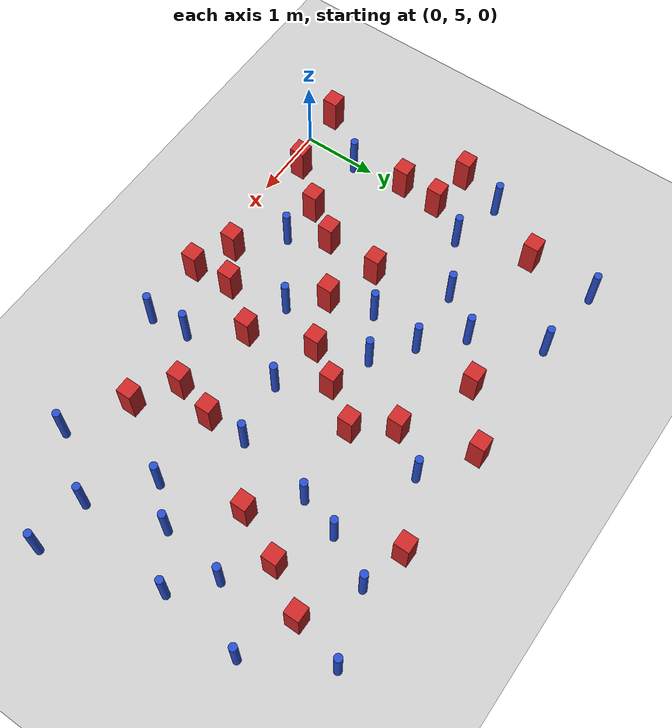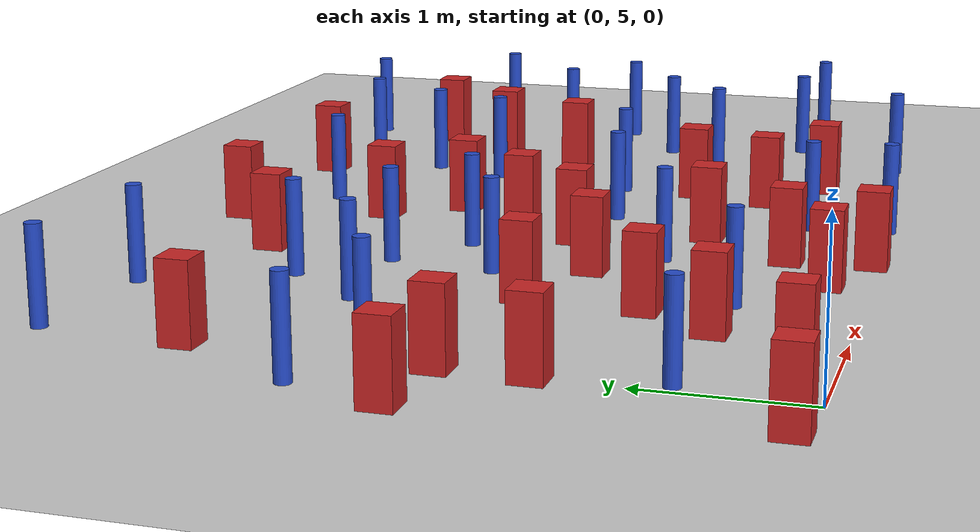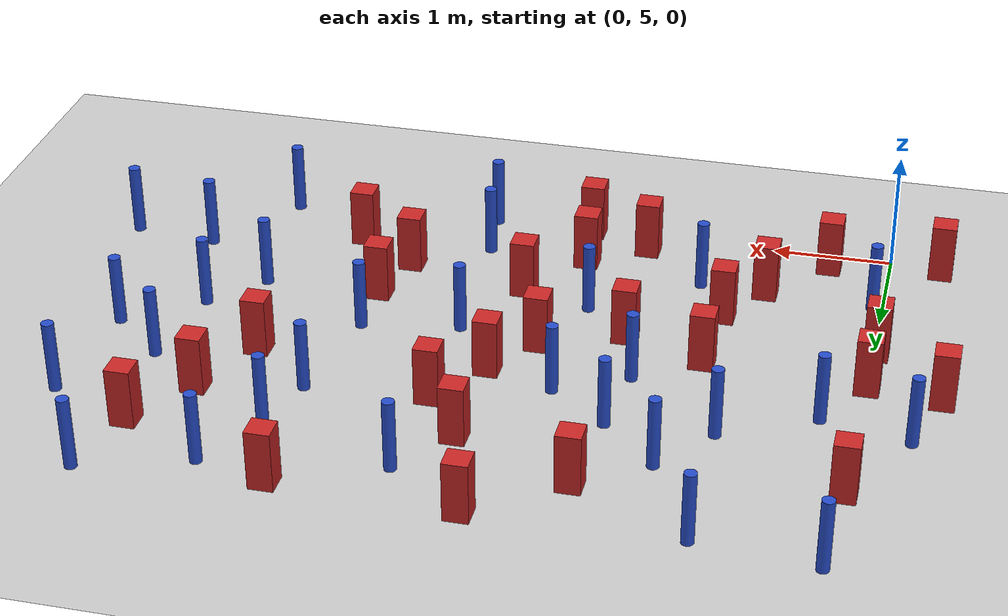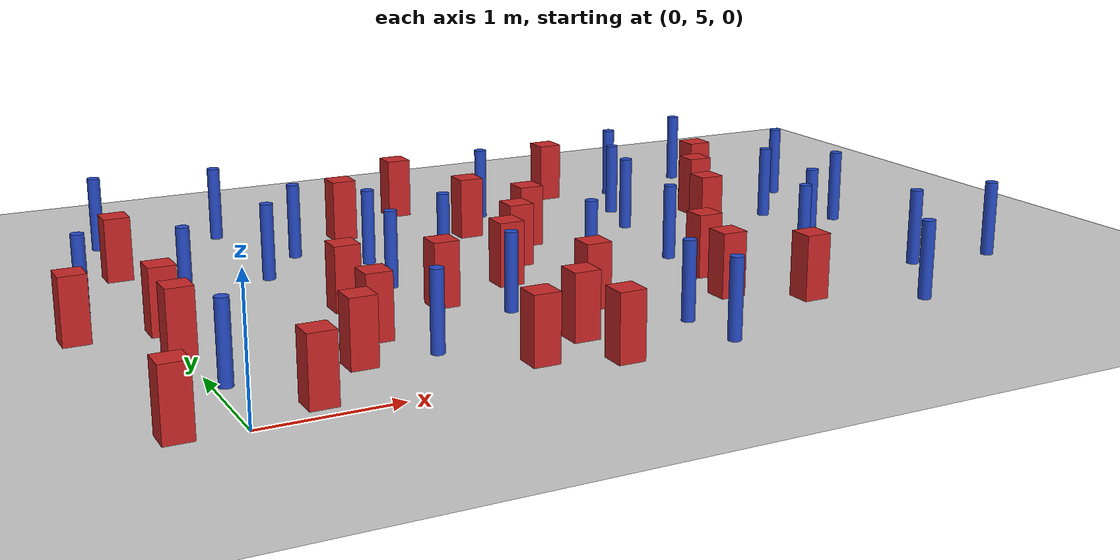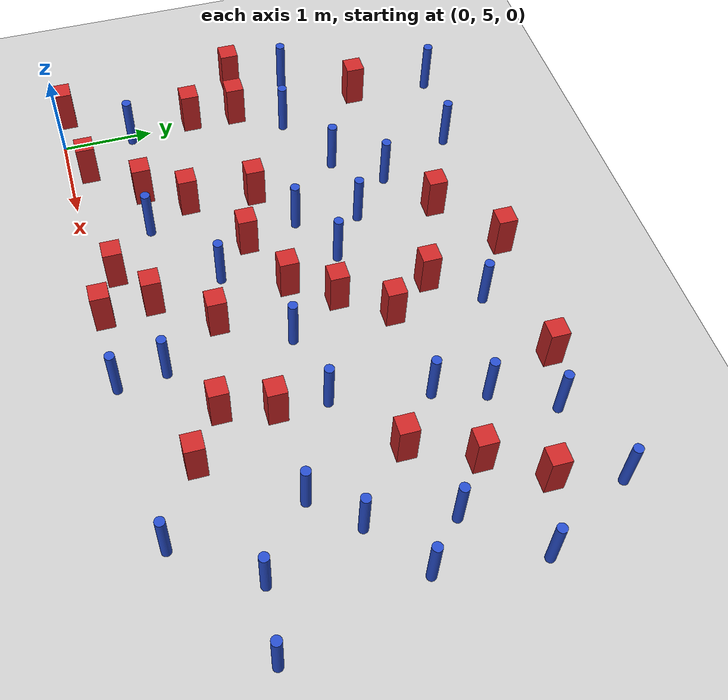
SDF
<sdf version="1.6">
 <world name="default">
  <model name="ground_plane">
   <static>1</static>
   <link name="link">
    <collision name="collision">
     <geometry><plane><normal>0 0 1</normal><size>100 100</size></plane></geometry>
     <surface><friction><ode><mu>100</mu><mu2>50</mu2></ode></friction></surface>
    </collision>
    <visual name="visual">
     <cast_shadows>0</cast_shadows>
     <geometry><plane><normal>0 0 1</normal><size>100 100</size></plane></geometry>
     <material>
      <ambient>1.0 1.0 1.0 1.0</ambient>
      <diffuse>0.8 0.8 0.8 1.0</diffuse>
      <specular>0.01 0.01 0.01 1.000000</specular>
     </material>
    </visual>
   </link>
  </model>
  <model name="square_post_obstacle2">
   <static>true</static>
   <pose>1.98796259758 8.79304583945 8.22691968438e-08 7.22125133819e-06 -7.54495500217e-07 2.29674213826e-05</pose>
   <link name="link">
    <pose>0 0 0.25 0 -0 0</pose>
    <inertial>
     <mass>100</mass>
     <inertia>
      <ixx>0.166667</ixx>
      <ixy>0</ixy>
      <ixz>0</ixz>
      <iyy>0.166667</iyy>
      <iyz>0</iyz>
      <izz>0.166667</izz>
     </inertia>
    </inertial>
    <collision name="collision"><geometry><box><size>.2 .2 .5</size></box></geometry></collision>
    <visual name="visual">
     <geometry><box><size>.2 .2 .5</size></box></geometry>
     <material>
      <script><name>Gazebo/Red</name><uri>file://media/materials/scripts/gazebo.material</uri></script>
     </material>
    </visual>
   </link>
  </model>
  <model name="pole_obstacle6">
   <static>true</static>
   <pose>-0.401653053069 7.68126445907 2.88873142074e-08 -9.90536689683e-09 4.60219948993e-07 -1.20965994957e-07</pose>
   <link name="link">
    <pose>0 0 0.3 0 -0 0</pose>
    <inertial>
     <mass>1</mass>
     <inertia><ixx>0.145833</ixx><ixy>0</ixy><ixz>0</ixz><iyy>0.145833</iyy><iyz>0</iyz><izz>0.125</izz></inertia>
    </inertial>
    <collision name="collision">
     <geometry><cylinder><radius>0.05</radius><length>.6</length></cylinder></geometry>
    </collision>
    <visual name="visual">
     <geometry><cylinder><radius>0.05</radius><length>.6</length></cylinder></geometry>
     <material>
      <script><name>Gazebo/Blue</name><uri>file://media/materials/scripts/gazebo.material</uri></script>
     </material>
    </visual>
   </link>
  </model>
  <model name="square_post_obstacle16">
   <static>true</static>
   <pose>2.9685054038 8.38365532075 8.22691968438e-08 7.22125133819e-06 -7.54495500217e-07 2.29674213826e-05</pose>
   <link name="link">
    <pose>0 0 0.25 0 -0 0</pose>
    <inertial>
     <mass>100</mass>
     <inertia>
      <ixx>0.166667</ixx>
      <ixy>0</ixy>
      <ixz>0</ixz>
      <iyy>0.166667</iyy>
      <iyz>0</iyz>
      <izz>0.166667</izz>
     </inertia>
    </inertial>
    <collision name="collision"><geometry><box><size>.2 .2 .5</size></box></geometry></collision>
    <visual name="visual">
     <geometry><box><size>.2 .2 .5</size></box></geometry>
     <material>
      <script><name>Gazebo/Red</name><uri>file://media/materials/scripts/gazebo.material</uri></script>
     </material>
    </visual>
   </link>
  </model>
  <model name="pole_obstacle12">
   <static>true</static>
   <pose>5.22611355301 5.19054820022 2.88873142074e-08 -9.90536690842e-09 4.60219948965e-07 -1.20965994976e-07</pose>
   <link name="link">
    <pose>0 0 0.3 0 -0 0</pose>
    <inertial>
     <mass>1</mass>
     <inertia><ixx>0.145833</ixx><ixy>0</ixy><ixz>0</ixz><iyy>0.145833</iyy><iyz>0</iyz><izz>0.125</izz></inertia>
    </inertial>
    <collision name="collision">
     <geometry><cylinder><radius>0.05</radius><length>.6</length></cylinder></geometry>
    </collision>
    <visual name="visual">
     <geometry><cylinder><radius>0.05</radius><length>.6</length></cylinder></geometry>
     <material>
      <script><name>Gazebo/Blue</name><uri>file://media/materials/scripts/gazebo.material</uri></script>
     </material>
    </visual>
   </link>
  </model>
  <model name="pole_obstacle26">
   <static>true</static>
   <pose>6.05952672036 7.37521620662 2.88873142074e-08 -9.90536690842e-09 4.60219948965e-07 -1.20965994976e-07</pose>
   <link name="link">
    <pose>0 0 0.3 0 -0 0</pose>
    <inertial>
     <mass>1</mass>
     <inertia><ixx>0.145833</ixx><ixy>0</ixy><ixz>0</ixz><iyy>0.145833</iyy><iyz>0</iyz><izz>0.125</izz></inertia>
    </inertial>
    <collision name="collision">
     <geometry><cylinder><radius>0.05</radius><length>.6</length></cylinder></geometry>
    </collision>
    <visual name="visual">
     <geometry><cylinder><radius>0.05</radius><length>.6</length></cylinder></geometry>
     <material>
      <script><name>Gazebo/Blue</name><uri>file://media/materials/scripts/gazebo.material</uri></script>
     </material>
    </visual>
   </link>
  </model>
  <model name="pole_obstacle28">
   <static>true</static>
   <pose>0.0853518656689 5.77530740988 2.88873142074e-08 -9.90536689742e-09 4.60219948992e-07 -1.2096599496e-07</pose>
   <link name="link">
    <pose>0 0 0.3 0 -0 0</pose>
    <inertial>
     <mass>1</mass>
     <inertia><ixx>0.145833</ixx><ixy>0</ixy><ixz>0</ixz><iyy>0.145833</iyy><iyz>0</iyz><izz>0.125</izz></inertia>
    </inertial>
    <collision name="collision">
     <geometry><cylinder><radius>0.05</radius><length>.6</length></cylinder></geometry>
    </collision>
    <visual name="visual">
     <geometry><cylinder><radius>0.05</radius><length>.6</length></cylinder></geometry>
     <material>
      <script><name>Gazebo/Blue</name><uri>file://media/materials/scripts/gazebo.material</uri></script>
     </material>
    </visual>
   </link>
  </model>
  <model name="pole_obstacle31">
   <static>true</static>
   <pose>2.36539712762 6.32316759056 2.88873142074e-08 -9.90536689859e-09 4.60219948989e-07 -1.20965994961e-07</pose>
   <link name="link">
    <pose>0 0 0.3 0 -0 0</pose>
    <inertial>
     <mass>1</mass>
     <inertia><ixx>0.145833</ixx><ixy>0</ixy><ixz>0</ixz><iyy>0.145833</iyy><iyz>0</iyz><izz>0.125</izz></inertia>
    </inertial>
    <collision name="collision">
     <geometry><cylinder><radius>0.05</radius><length>.6</length></cylinder></geometry>
    </collision>
    <visual name="visual">
     <geometry><cylinder><radius>0.05</radius><length>.6</length></cylinder></geometry>
     <material>
      <script><name>Gazebo/Blue</name><uri>file://media/materials/scripts/gazebo.material</uri></script>
     </material>
    </visual>
   </link>
  </model>
  <model name="pole_obstacle40">
   <static>true</static>
   <pose>4.76409108088 9.11372252063 2.88873142074e-08 -9.9053668967e-09 4.60219948993e-07 -1.20965994957e-07</pose>
   <link name="link">
    <pose>0 0 0.3 0 -0 0</pose>
    <inertial>
     <mass>1</mass>
     <inertia><ixx>0.145833</ixx><ixy>0</ixy><ixz>0</ixz><iyy>0.145833</iyy><iyz>0</iyz><izz>0.125</izz></inertia>
    </inertial>
    <collision name="collision">
     <geometry><cylinder><radius>0.05</radius><length>.6</length></cylinder></geometry>
    </collision>
    <visual name="visual">
     <geometry><cylinder><radius>0.05</radius><length>.6</length></cylinder></geometry>
     <material>
      <script><name>Gazebo/Blue</name><uri>file://media/materials/scripts/gazebo.material</uri></script>
     </material>
    </visual>
   </link>
  </model>
  <model name="square_post_obstacle44">
   <static>true</static>
   <pose>1.98418487472 6.69702983785 8.22691968438e-08 7.2212513382e-06 -7.54495500217e-07 2.29674213826e-05</pose>
   <link name="link">
    <pose>0 0 0.25 0 -0 0</pose>
    <inertial>
     <mass>100</mass>
     <inertia>
      <ixx>0.166667</ixx>
      <ixy>0</ixy>
      <ixz>0</ixz>
      <iyy>0.166667</iyy>
      <iyz>0</iyz>
      <izz>0.166667</izz>
     </inertia>
    </inertial>
    <collision name="collision"><geometry><box><size>.2 .2 .5</size></box></geometry></collision>
    <visual name="visual">
     <geometry><box><size>.2 .2 .5</size></box></geometry>
     <material>
      <script><name>Gazebo/Red</name><uri>file://media/materials/scripts/gazebo.material</uri></script>
     </material>
    </visual>
   </link>
  </model>
  <model name="square_post_obstacle50">
   <static>true</static>
   <pose>0.00299249147081 7.01537845196 8.22691968438e-08 7.2212513382e-06 -7.54495500217e-07 2.29674213826e-05</pose>
   <link name="link">
    <pose>0 0 0.25 0 -0 0</pose>
    <inertial>
     <mass>100</mass>
     <inertia>
      <ixx>0.166667</ixx>
      <ixy>0</ixy>
      <ixz>0</ixz>
      <iyy>0.166667</iyy>
      <iyz>0</iyz>
      <izz>0.166667</izz>
     </inertia>
    </inertial>
    <collision name="collision"><geometry><box><size>.2 .2 .5</size></box></geometry></collision>
    <visual name="visual">
     <geometry><box><size>.2 .2 .5</size></box></geometry>
     <material>
      <script><name>Gazebo/Red</name><uri>file://media/materials/scripts/gazebo.material</uri></script>
     </material>
    </visual>
   </link>
  </model>
  <model name="square_post_obstacle51">
   <static>true</static>
   <pose>5.11383252904 8.17277839527 8.22691968438e-08 7.22125133819e-06 -7.54495500217e-07 2.29674213826e-05</pose>
   <link name="link">
    <pose>0 0 0.25 0 -0 0</pose>
    <inertial>
     <mass>100</mass>
     <inertia>
      <ixx>0.166667</ixx>
      <ixy>0</ixy>
      <ixz>0</ixz>
      <iyy>0.166667</iyy>
      <iyz>0</iyz>
      <izz>0.166667</izz>
     </inertia>
    </inertial>
    <collision name="collision"><geometry><box><size>.2 .2 .5</size></box></geometry></collision>
    <visual name="visual">
     <geometry><box><size>.2 .2 .5</size></box></geometry>
     <material>
      <script><name>Gazebo/Red</name><uri>file://media/materials/scripts/gazebo.material</uri></script>
     </material>
    </visual>
   </link>
  </model>
  <model name="square_post_obstacle52">
   <static>true</static>
   <pose>1.31627842537 6.93878503025 8.22691968438e-08 7.2212513382e-06 -7.54495500217e-07 2.29674213826e-05</pose>
   <link name="link">
    <pose>0 0 0.25 0 -0 0</pose>
    <inertial>
     <mass>100</mass>
     <inertia>
      <ixx>0.166667</ixx>
      <ixy>0</ixy>
      <ixz>0</ixz>
      <iyy>0.166667</iyy>
      <iyz>0</iyz>
      <izz>0.166667</izz>
     </inertia>
    </inertial>
    <collision name="collision"><geometry><box><size>.2 .2 .5</size></box></geometry></collision>
    <visual name="visual">
     <geometry><box><size>.2 .2 .5</size></box></geometry>
     <material>
      <script><name>Gazebo/Red</name><uri>file://media/materials/scripts/gazebo.material</uri></script>
     </material>
    </visual>
   </link>
  </model>
  <model name="square_post_obstacle54">
   <static>true</static>
   <pose>4.48538661829 5.61613621962 8.22691968438e-08 7.2212513382e-06 -7.54495500217e-07 2.29674213826e-05</pose>
   <link name="link">
    <pose>0 0 0.25 0 -0 0</pose>
    <inertial>
     <mass>100</mass>
     <inertia>
      <ixx>0.166667</ixx>
      <ixy>0</ixy>
      <ixz>0</ixz>
      <iyy>0.166667</iyy>
      <iyz>0</iyz>
      <izz>0.166667</izz>
     </inertia>
    </inertial>
    <collision name="collision"><geometry><box><size>.2 .2 .5</size></box></geometry></collision>
    <visual name="visual">
     <geometry><box><size>.2 .2 .5</size></box></geometry>
     <material>
      <script><name>Gazebo/Red</name><uri>file://media/materials/scripts/gazebo.material</uri></script>
     </material>
    </visual>
   </link>
  </model>
  <model name="square_post_obstacle60">
   <static>true</static>
   <pose>0.504107312801 5.21696208588 8.22691968438e-08 7.2212513382e-06 -7.54495500217e-07 2.29674213826e-05</pose>
   <link name="link">
    <pose>0 0 0.25 0 -0 0</pose>
    <inertial>
     <mass>100</mass>
     <inertia>
      <ixx>0.166667</ixx>
      <ixy>0</ixy>
      <ixz>0</ixz>
      <iyy>0.166667</iyy>
      <iyz>0</iyz>
      <izz>0.166667</izz>
     </inertia>
    </inertial>
    <collision name="collision"><geometry><box><size>.2 .2 .5</size></box></geometry></collision>
    <visual name="visual">
     <geometry><box><size>.2 .2 .5</size></box></geometry>
     <material>
      <script><name>Gazebo/Red</name><uri>file://media/materials/scripts/gazebo.material</uri></script>
     </material>
    </visual>
   </link>
  </model>
  <model name="square_post_obstacle61">
   <static>true</static>
   <pose>-0.0183227264189 6.49176881317 8.22691968438e-08 7.22125133819e-06 -7.54495500217e-07 2.29674213826e-05</pose>
   <link name="link">
    <pose>0 0 0.25 0 -0 0</pose>
    <inertial>
     <mass>100</mass>
     <inertia>
      <ixx>0.166667</ixx>
      <ixy>0</ixy>
      <ixz>0</ixz>
      <iyy>0.166667</iyy>
      <iyz>0</iyz>
      <izz>0.166667</izz>
     </inertia>
    </inertial>
    <collision name="collision"><geometry><box><size>.2 .2 .5</size></box></geometry></collision>
    <visual name="visual">
     <geometry><box><size>.2 .2 .5</size></box></geometry>
     <material>
      <script><name>Gazebo/Red</name><uri>file://media/materials/scripts/gazebo.material</uri></script>
     </material>
    </visual>
   </link>
  </model>
  <model name="pole_obstacle58">
   <static>true</static>
   <pose>4.11882379785 6.99465052671 2.88873142074e-08 -9.90536690842e-09 4.60219948965e-07 -1.20965994976e-07</pose>
   <link name="link">
    <pose>0 0 0.3 0 -0 0</pose>
    <inertial>
     <mass>1</mass>
     <inertia><ixx>0.145833</ixx><ixy>0</ixy><ixz>0</ixz><iyy>0.145833</iyy><iyz>0</iyz><izz>0.125</izz></inertia>
    </inertial>
    <collision name="collision">
     <geometry><cylinder><radius>0.05</radius><length>.6</length></cylinder></geometry>
    </collision>
    <visual name="visual">
     <geometry><cylinder><radius>0.05</radius><length>.6</length></cylinder></geometry>
     <material>
      <script><name>Gazebo/Blue</name><uri>file://media/materials/scripts/gazebo.material</uri></script>
     </material>
    </visual>
   </link>
  </model>
  <model name="square_post_obstacle63">
   <static>true</static>
   <pose>2.576629722 5.05891316451 8.22691968438e-08 7.2212513382e-06 -7.54495500217e-07 2.29674213826e-05</pose>
   <link name="link">
    <pose>0 0 0.25 0 -0 0</pose>
    <inertial>
     <mass>100</mass>
     <inertia>
      <ixx>0.166667</ixx>
      <ixy>0</ixy>
      <ixz>0</ixz>
      <iyy>0.166667</iyy>
      <iyz>0</iyz>
      <izz>0.166667</izz>
     </inertia>
    </inertial>
    <collision name="collision"><geometry><box><size>.2 .2 .5</size></box></geometry></collision>
    <visual name="visual">
     <geometry><box><size>.2 .2 .5</size></box></geometry>
     <material>
      <script><name>Gazebo/Red</name><uri>file://media/materials/scripts/gazebo.material</uri></script>
     </material>
    </visual>
   </link>
  </model>
  <model name="pole_obstacle65">
   <static>true</static>
   <pose>5.7673109105 5.96289307169 2.88873142074e-08 -9.90536690842e-09 4.60219948965e-07 -1.20965994976e-07</pose>
   <link name="link">
    <pose>0 0 0.3 0 -0 0</pose>
    <inertial>
     <mass>1</mass>
     <inertia><ixx>0.145833</ixx><ixy>0</ixy><ixz>0</ixz><iyy>0.145833</iyy><iyz>0</iyz><izz>0.125</izz></inertia>
    </inertial>
    <collision name="collision">
     <geometry><cylinder><radius>0.05</radius><length>.6</length></cylinder></geometry>
    </collision>
    <visual name="visual">
     <geometry><cylinder><radius>0.05</radius><length>.6</length></cylinder></geometry>
     <material>
      <script><name>Gazebo/Blue</name><uri>file://media/materials/scripts/gazebo.material</uri></script>
     </material>
    </visual>
   </link>
  </model>
  <model name="pole_obstacle77">
   <static>true</static>
   <pose>3.43847141067 5.04872722014 2.88873142074e-08 -9.90536689859e-09 4.60219948989e-07 -1.20965994961e-07</pose>
   <link name="link">
    <pose>0 0 0.3 0 -0 0</pose>
    <inertial>
     <mass>1</mass>
     <inertia><ixx>0.145833</ixx><ixy>0</ixy><ixz>0</ixz><iyy>0.145833</iyy><iyz>0</iyz><izz>0.125</izz></inertia>
    </inertial>
    <collision name="collision">
     <geometry><cylinder><radius>0.05</radius><length>.6</length></cylinder></geometry>
    </collision>
    <visual name="visual">
     <geometry><cylinder><radius>0.05</radius><length>.6</length></cylinder></geometry>
     <material>
      <script><name>Gazebo/Blue</name><uri>file://media/materials/scripts/gazebo.material</uri></script>
     </material>
    </visual>
   </link>
  </model>
  <model name="pole_obstacle78">
   <static>true</static>
   <pose>1.906260697 7.95363622304 2.88873142074e-08 -9.9053669006e-09 4.60219948984e-07 -1.20965994963e-07</pose>
   <link name="link">
    <pose>0 0 0.3 0 -0 0</pose>
    <inertial>
     <mass>1</mass>
     <inertia><ixx>0.145833</ixx><ixy>0</ixy><ixz>0</ixz><iyy>0.145833</iyy><iyz>0</iyz><izz>0.125</izz></inertia>
    </inertial>
    <collision name="collision">
     <geometry><cylinder><radius>0.05</radius><length>.6</length></cylinder></geometry>
    </collision>
    <visual name="visual">
     <geometry><cylinder><radius>0.05</radius><length>.6</length></cylinder></geometry>
     <material>
      <script><name>Gazebo/Blue</name><uri>file://media/materials/scripts/gazebo.material</uri></script>
     </material>
    </visual>
   </link>
  </model>
  <model name="square_post_obstacle80">
   <static>true</static>
   <pose>4.81383185864 7.53003523615 8.22691968438e-08 7.2212513382e-06 -7.54495500217e-07 2.29674213826e-05</pose>
   <link name="link">
    <pose>0 0 0.25 0 -0 0</pose>
    <inertial>
     <mass>100</mass>
     <inertia>
      <ixx>0.166667</ixx>
      <ixy>0</ixy>
      <ixz>0</ixz>
      <iyy>0.166667</iyy>
      <iyz>0</iyz>
      <izz>0.166667</izz>
     </inertia>
    </inertial>
    <collision name="collision"><geometry><box><size>.2 .2 .5</size></box></geometry></collision>
    <visual name="visual">
     <geometry><box><size>.2 .2 .5</size></box></geometry>
     <material>
      <script><name>Gazebo/Red</name><uri>file://media/materials/scripts/gazebo.material</uri></script>
     </material>
    </visual>
   </link>
  </model>
  <model name="pole_obstacle87">
   <static>true</static>
   <pose>4.45098887525 8.50598818341 2.88873142074e-08 -9.9053668967e-09 4.60219948993e-07 -1.20965994957e-07</pose>
   <link name="link">
    <pose>0 0 0.3 0 -0 0</pose>
    <inertial>
     <mass>1</mass>
     <inertia><ixx>0.145833</ixx><ixy>0</ixy><ixz>0</ixz><iyy>0.145833</iyy><iyz>0</iyz><izz>0.125</izz></inertia>
    </inertial>
    <collision name="collision">
     <geometry><cylinder><radius>0.05</radius><length>.6</length></cylinder></geometry>
    </collision>
    <visual name="visual">
     <geometry><cylinder><radius>0.05</radius><length>.6</length></cylinder></geometry>
     <material>
      <script><name>Gazebo/Blue</name><uri>file://media/materials/scripts/gazebo.material</uri></script>
     </material>
    </visual>
   </link>
  </model>
  <model name="square_post_obstacle87">
   <static>true</static>
   <pose>3.29406379218 7.91090531966 8.22691968438e-08 7.22125133819e-06 -7.54495500217e-07 2.29674213826e-05</pose>
   <link name="link">
    <pose>0 0 0.25 0 -0 0</pose>
    <inertial>
     <mass>100</mass>
     <inertia>
      <ixx>0.166667</ixx>
      <ixy>0</ixy>
      <ixz>0</ixz>
      <iyy>0.166667</iyy>
      <iyz>0</iyz>
      <izz>0.166667</izz>
     </inertia>
    </inertial>
    <collision name="collision"><geometry><box><size>.2 .2 .5</size></box></geometry></collision>
    <visual name="visual">
     <geometry><box><size>.2 .2 .5</size></box></geometry>
     <material>
      <script><name>Gazebo/Red</name><uri>file://media/materials/scripts/gazebo.material</uri></script>
     </material>
    </visual>
   </link>
  </model>
  <model name="square_post_obstacle90">
   <static>true</static>
   <pose>2.05681841043 5.26828427987 8.22691968438e-08 7.22125133819e-06 -7.54495500217e-07 2.29674213826e-05</pose>
   <link name="link">
    <pose>0 0 0.25 0 -0 0</pose>
    <inertial>
     <mass>100</mass>
     <inertia>
      <ixx>0.166667</ixx>
      <ixy>0</ixy>
      <ixz>0</ixz>
      <iyy>0.166667</iyy>
      <iyz>0</iyz>
      <izz>0.166667</izz>
     </inertia>
    </inertial>
    <collision name="collision"><geometry><box><size>.2 .2 .5</size></box></geometry></collision>
    <visual name="visual">
     <geometry><box><size>.2 .2 .5</size></box></geometry>
     <material>
      <script><name>Gazebo/Red</name><uri>file://media/materials/scripts/gazebo.material</uri></script>
     </material>
    </visual>
   </link>
  </model>
  <model name="pole_obstacle102">
   <static>true</static>
   <pose>1.52292621825 5.73033918514 2.88873142074e-08 -9.90536689852e-09 4.60219948989e-07 -1.2096599496e-07</pose>
   <link name="link">
    <pose>0 0 0.3 0 -0 0</pose>
    <inertial>
     <mass>1</mass>
     <inertia><ixx>0.145833</ixx><ixy>0</ixy><ixz>0</ixz><iyy>0.145833</iyy><iyz>0</iyz><izz>0.125</izz></inertia>
    </inertial>
    <collision name="collision">
     <geometry><cylinder><radius>0.05</radius><length>.6</length></cylinder></geometry>
    </collision>
    <visual name="visual">
     <geometry><cylinder><radius>0.05</radius><length>.6</length></cylinder></geometry>
     <material>
      <script><name>Gazebo/Blue</name><uri>file://media/materials/scripts/gazebo.material</uri></script>
     </material>
    </visual>
   </link>
  </model>
  <model name="square_post_obstacle108">
   <static>true</static>
   <pose>-0.424550774962 5.09280565136 8.22691968438e-08 7.22125133819e-06 -7.54495500217e-07 2.29674213826e-05</pose>
   <link name="link">
    <pose>0 0 0.25 0 -0 0</pose>
    <inertial>
     <mass>100</mass>
     <inertia>
      <ixx>0.166667</ixx>
      <ixy>0</ixy>
      <ixz>0</ixz>
      <iyy>0.166667</iyy>
      <iyz>0</iyz>
      <izz>0.166667</izz>
     </inertia>
    </inertial>
    <collision name="collision"><geometry><box><size>.2 .2 .5</size></box></geometry></collision>
    <visual name="visual">
     <geometry><box><size>.2 .2 .5</size></box></geometry>
     <material>
      <script><name>Gazebo/Red</name><uri>file://media/materials/scripts/gazebo.material</uri></script>
     </material>
    </visual>
   </link>
  </model>
  <model name="pole_obstacle122">
   <static>true</static>
   <pose>0.0728025903023 9.35062687829 2.88873142074e-08 -9.90536691036e-09 4.60219948961e-07 -1.2096599498e-07</pose>
   <link name="link">
    <pose>0 0 0.3 0 -0 0</pose>
    <inertial>
     <mass>1</mass>
     <inertia><ixx>0.145833</ixx><ixy>0</ixy><ixz>0</ixz><iyy>0.145833</iyy><iyz>0</iyz><izz>0.125</izz></inertia>
    </inertial>
    <collision name="collision">
     <geometry><cylinder><radius>0.05</radius><length>.6</length></cylinder></geometry>
    </collision>
    <visual name="visual">
     <geometry><cylinder><radius>0.05</radius><length>.6</length></cylinder></geometry>
     <material>
      <script><name>Gazebo/Blue</name><uri>file://media/materials/scripts/gazebo.material</uri></script>
     </material>
    </visual>
   </link>
  </model>
  <model name="pole_obstacle125">
   <static>true</static>
   <pose>5.47486147305 6.93343049199 2.88873142074e-08 -9.90536690842e-09 4.60219948965e-07 -1.20965994976e-07</pose>
   <link name="link">
    <pose>0 0 0.3 0 -0 0</pose>
    <inertial>
     <mass>1</mass>
     <inertia><ixx>0.145833</ixx><ixy>0</ixy><ixz>0</ixz><iyy>0.145833</iyy><iyz>0</iyz><izz>0.125</izz></inertia>
    </inertial>
    <collision name="collision">
     <geometry><cylinder><radius>0.05</radius><length>.6</length></cylinder></geometry>
    </collision>
    <visual name="visual">
     <geometry><cylinder><radius>0.05</radius><length>.6</length></cylinder></geometry>
     <material>
      <script><name>Gazebo/Blue</name><uri>file://media/materials/scripts/gazebo.material</uri></script>
     </material>
    </visual>
   </link>
  </model>
  <model name="pole_obstacle131">
   <static>true</static>
   <pose>5.60012050477 7.78308264476 2.88873142074e-08 -9.90536690842e-09 4.60219948965e-07 -1.20965994976e-07</pose>
   <link name="link">
    <pose>0 0 0.3 0 -0 0</pose>
    <inertial>
     <mass>1</mass>
     <inertia><ixx>0.145833</ixx><ixy>0</ixy><ixz>0</ixz><iyy>0.145833</iyy><iyz>0</iyz><izz>0.125</izz></inertia>
    </inertial>
    <collision name="collision">
     <geometry><cylinder><radius>0.05</radius><length>.6</length></cylinder></geometry>
    </collision>
    <visual name="visual">
     <geometry><cylinder><radius>0.05</radius><length>.6</length></cylinder></geometry>
     <material>
      <script><name>Gazebo/Blue</name><uri>file://media/materials/scripts/gazebo.material</uri></script>
     </material>
    </visual>
   </link>
  </model>
  <model name="pole_obstacle133">
   <static>true</static>
   <pose>6.17455995998 8.44101505554 2.88873142074e-08 -9.9053668967e-09 4.60219948993e-07 -1.20965994957e-07</pose>
   <link name="link">
    <pose>0 0 0.3 0 -0 0</pose>
    <inertial>
     <mass>1</mass>
     <inertia><ixx>0.145833</ixx><ixy>0</ixy><ixz>0</ixz><iyy>0.145833</iyy><iyz>0</iyz><izz>0.125</izz></inertia>
    </inertial>
    <collision name="collision">
     <geometry><cylinder><radius>0.05</radius><length>.6</length></cylinder></geometry>
    </collision>
    <visual name="visual">
     <geometry><cylinder><radius>0.05</radius><length>.6</length></cylinder></geometry>
     <material>
      <script><name>Gazebo/Blue</name><uri>file://media/materials/scripts/gazebo.material</uri></script>
     </material>
    </visual>
   </link>
  </model>
  <model name="square_post_obstacle115">
   <static>true</static>
   <pose>0.976082798775 5.75365194001 8.22691968438e-08 7.2212513382e-06 -7.54495500217e-07 2.29674213826e-05</pose>
   <link name="link">
    <pose>0 0 0.25 0 -0 0</pose>
    <inertial>
     <mass>100</mass>
     <inertia>
      <ixx>0.166667</ixx>
      <ixy>0</ixy>
      <ixz>0</ixz>
      <iyy>0.166667</iyy>
      <iyz>0</iyz>
      <izz>0.166667</izz>
     </inertia>
    </inertial>
    <collision name="collision"><geometry><box><size>.2 .2 .5</size></box></geometry></collision>
    <visual name="visual">
     <geometry><box><size>.2 .2 .5</size></box></geometry>
     <material>
      <script><name>Gazebo/Red</name><uri>file://media/materials/scripts/gazebo.material</uri></script>
     </material>
    </visual>
   </link>
  </model>
  <model name="square_post_obstacle117">
   <static>true</static>
   <pose>5.46839070892 8.73022994787 8.22691968438e-08 7.22125133819e-06 -7.54495500217e-07 2.29674213826e-05</pose>
   <link name="link">
    <pose>0 0 0.25 0 -0 0</pose>
    <inertial>
     <mass>100</mass>
     <inertia>
      <ixx>0.166667</ixx>
      <ixy>0</ixy>
      <ixz>0</ixz>
      <iyy>0.166667</iyy>
      <iyz>0</iyz>
      <izz>0.166667</izz>
     </inertia>
    </inertial>
    <collision name="collision"><geometry><box><size>.2 .2 .5</size></box></geometry></collision>
    <visual name="visual">
     <geometry><box><size>.2 .2 .5</size></box></geometry>
     <material>
      <script><name>Gazebo/Red</name><uri>file://media/materials/scripts/gazebo.material</uri></script>
     </material>
    </visual>
   </link>
  </model>
  <model name="pole_obstacle136">
   <static>true</static>
   <pose>1.0400785377 9.25535742104 2.88873142074e-08 -9.90536690572e-09 4.60219948972e-07 -1.20965994971e-07</pose>
   <link name="link">
    <pose>0 0 0.3 0 -0 0</pose>
    <inertial>
     <mass>1</mass>
     <inertia><ixx>0.145833</ixx><ixy>0</ixy><ixz>0</ixz><iyy>0.145833</iyy><iyz>0</iyz><izz>0.125</izz></inertia>
    </inertial>
    <collision name="collision">
     <geometry><cylinder><radius>0.05</radius><length>.6</length></cylinder></geometry>
    </collision>
    <visual name="visual">
     <geometry><cylinder><radius>0.05</radius><length>.6</length></cylinder></geometry>
     <material>
      <script><name>Gazebo/Blue</name><uri>file://media/materials/scripts/gazebo.material</uri></script>
     </material>
    </visual>
   </link>
  </model>
  <model name="square_post_obstacle121">
   <static>true</static>
   <pose>4.11030824783 6.47714069084 8.22691968438e-08 7.2212513382e-06 -7.54495500217e-07 2.29674213826e-05</pose>
   <link name="link">
    <pose>0 0 0.25 0 -0 0</pose>
    <inertial>
     <mass>100</mass>
     <inertia>
      <ixx>0.166667</ixx>
      <ixy>0</ixy>
      <ixz>0</ixz>
      <iyy>0.166667</iyy>
      <iyz>0</iyz>
      <izz>0.166667</izz>
     </inertia>
    </inertial>
    <collision name="collision"><geometry><box><size>.2 .2 .5</size></box></geometry></collision>
    <visual name="visual">
     <geometry><box><size>.2 .2 .5</size></box></geometry>
     <material>
      <script><name>Gazebo/Red</name><uri>file://media/materials/scripts/gazebo.material</uri></script>
     </material>
    </visual>
   </link>
  </model>
  <model name="square_post_obstacle128">
   <static>true</static>
   <pose>2.64598736344 6.97241529829 8.22691968438e-08 7.2212513382e-06 -7.54495500217e-07 2.29674213826e-05</pose>
   <link name="link">
    <pose>0 0 0.25 0 -0 0</pose>
    <inertial>
     <mass>100</mass>
     <inertia>
      <ixx>0.166667</ixx>
      <ixy>0</ixy>
      <ixz>0</ixz>
      <iyy>0.166667</iyy>
      <iyz>0</iyz>
      <izz>0.166667</izz>
     </inertia>
    </inertial>
    <collision name="collision"><geometry><box><size>.2 .2 .5</size></box></geometry></collision>
    <visual name="visual">
     <geometry><box><size>.2 .2 .5</size></box></geometry>
     <material>
      <script><name>Gazebo/Red</name><uri>file://media/materials/scripts/gazebo.material</uri></script>
     </material>
    </visual>
   </link>
  </model>
  <model name="square_post_obstacle131">
   <static>true</static>
   <pose>3.97374175369 5.94972432025 8.22691968438e-08 7.2212513382e-06 -7.54495500217e-07 2.29674213826e-05</pose>
   <link name="link">
    <pose>0 0 0.25 0 -0 0</pose>
    <inertial>
     <mass>100</mass>
     <inertia>
      <ixx>0.166667</ixx>
      <ixy>0</ixy>
      <ixz>0</ixz>
      <iyy>0.166667</iyy>
      <iyz>0</iyz>
      <izz>0.166667</izz>
     </inertia>
    </inertial>
    <collision name="collision"><geometry><box><size>.2 .2 .5</size></box></geometry></collision>
    <visual name="visual">
     <geometry><box><size>.2 .2 .5</size></box></geometry>
     <material>
      <script><name>Gazebo/Red</name><uri>file://media/materials/scripts/gazebo.material</uri></script>
     </material>
    </visual>
   </link>
  </model>
  <model name="pole_obstacle150">
   <static>true</static>
   <pose>0.311093554867 7.52182814829 2.88873142074e-08 -9.90536689683e-09 4.60219948993e-07 -1.20965994957e-07</pose>
   <link name="link">
    <pose>0 0 0.3 0 -0 0</pose>
    <inertial>
     <mass>1</mass>
     <inertia><ixx>0.145833</ixx><ixy>0</ixy><ixz>0</ixz><iyy>0.145833</iyy><iyz>0</iyz><izz>0.125</izz></inertia>
    </inertial>
    <collision name="collision">
     <geometry><cylinder><radius>0.05</radius><length>.6</length></cylinder></geometry>
    </collision>
    <visual name="visual">
     <geometry><cylinder><radius>0.05</radius><length>.6</length></cylinder></geometry>
     <material>
      <script><name>Gazebo/Blue</name><uri>file://media/materials/scripts/gazebo.material</uri></script>
     </material>
    </visual>
   </link>
  </model>
  <model name="pole_obstacle153">
   <static>true</static>
   <pose>5.08852444892 6.50512564951 2.88873142074e-08 -9.90536690842e-09 4.60219948965e-07 -1.20965994976e-07</pose>
   <link name="link">
    <pose>0 0 0.3 0 -0 0</pose>
    <inertial>
     <mass>1</mass>
     <inertia><ixx>0.145833</ixx><ixy>0</ixy><ixz>0</ixz><iyy>0.145833</iyy><iyz>0</iyz><izz>0.125</izz></inertia>
    </inertial>
    <collision name="collision">
     <geometry><cylinder><radius>0.05</radius><length>.6</length></cylinder></geometry>
    </collision>
    <visual name="visual">
     <geometry><cylinder><radius>0.05</radius><length>.6</length></cylinder></geometry>
     <material>
      <script><name>Gazebo/Blue</name><uri>file://media/materials/scripts/gazebo.material</uri></script>
     </material>
    </visual>
   </link>
  </model>
  <model name="square_post_obstacle153">
   <static>true</static>
   <pose>2.94608352463 6.15867766772 8.22691968438e-08 7.2212513382e-06 -7.54495500217e-07 2.29674213826e-05</pose>
   <link name="link">
    <pose>0 0 0.25 0 -0 0</pose>
    <inertial>
     <mass>100</mass>
     <inertia>
      <ixx>0.166667</ixx>
      <ixy>0</ixy>
      <ixz>0</ixz>
      <iyy>0.166667</iyy>
      <iyz>0</iyz>
      <izz>0.166667</izz>
     </inertia>
    </inertial>
    <collision name="collision"><geometry><box><size>.2 .2 .5</size></box></geometry></collision>
    <visual name="visual">
     <geometry><box><size>.2 .2 .5</size></box></geometry>
     <material>
      <script><name>Gazebo/Red</name><uri>file://media/materials/scripts/gazebo.material</uri></script>
     </material>
    </visual>
   </link>
  </model>
  <model name="pole_obstacle160">
   <static>true</static>
   <pose>3.32944073574 8.87900916686 2.88873142074e-08 -9.90536692318e-09 4.6021994893e-07 -1.20965994988e-07</pose>
   <link name="link">
    <pose>0 0 0.3 0 -0 0</pose>
    <inertial>
     <mass>1</mass>
     <inertia><ixx>0.145833</ixx><ixy>0</ixy><ixz>0</ixz><iyy>0.145833</iyy><iyz>0</iyz><izz>0.125</izz></inertia>
    </inertial>
    <collision name="collision">
     <geometry><cylinder><radius>0.05</radius><length>.6</length></cylinder></geometry>
    </collision>
    <visual name="visual">
     <geometry><cylinder><radius>0.05</radius><length>.6</length></cylinder></geometry>
     <material>
      <script><name>Gazebo/Blue</name><uri>file://media/materials/scripts/gazebo.material</uri></script>
     </material>
    </visual>
   </link>
  </model>
  <model name="pole_obstacle161">
   <static>true</static>
   <pose>1.8230822749 7.27394520352 2.88873142074e-08 -9.90536689852e-09 4.60219948989e-07 -1.2096599496e-07</pose>
   <link name="link">
    <pose>0 0 0.3 0 -0 0</pose>
    <inertial>
     <mass>1</mass>
     <inertia><ixx>0.145833</ixx><ixy>0</ixy><ixz>0</ixz><iyy>0.145833</iyy><iyz>0</iyz><izz>0.125</izz></inertia>
    </inertial>
    <collision name="collision">
     <geometry><cylinder><radius>0.05</radius><length>.6</length></cylinder></geometry>
    </collision>
    <visual name="visual">
     <geometry><cylinder><radius>0.05</radius><length>.6</length></cylinder></geometry>
     <material>
      <script><name>Gazebo/Blue</name><uri>file://media/materials/scripts/gazebo.material</uri></script>
     </material>
    </visual>
   </link>
  </model>
  <model name="pole_obstacle163">
   <static>true</static>
   <pose>2.39473473398 7.58475464257 2.88873142074e-08 -9.90536689859e-09 4.60219948989e-07 -1.20965994961e-07</pose>
   <link name="link">
    <pose>0 0 0.3 0 -0 0</pose>
    <inertial>
     <mass>1</mass>
     <inertia><ixx>0.145833</ixx><ixy>0</ixy><ixz>0</ixz><iyy>0.145833</iyy><iyz>0</iyz><izz>0.125</izz></inertia>
    </inertial>
    <collision name="collision">
     <geometry><cylinder><radius>0.05</radius><length>.6</length></cylinder></geometry>
    </collision>
    <visual name="visual">
     <geometry><cylinder><radius>0.05</radius><length>.6</length></cylinder></geometry>
     <material>
      <script><name>Gazebo/Blue</name><uri>file://media/materials/scripts/gazebo.material</uri></script>
     </material>
    </visual>
   </link>
  </model>
  <model name="pole_obstacle164">
   <static>true</static>
   <pose>5.64418793314 9.39166281814 2.88873142074e-08 -9.9053668967e-09 4.60219948993e-07 -1.20965994957e-07</pose>
   <link name="link">
    <pose>0 0 0.3 0 -0 0</pose>
    <inertial>
     <mass>1</mass>
     <inertia><ixx>0.145833</ixx><ixy>0</ixy><ixz>0</ixz><iyy>0.145833</iyy><iyz>0</iyz><izz>0.125</izz></inertia>
    </inertial>
    <collision name="collision">
     <geometry><cylinder><radius>0.05</radius><length>.6</length></cylinder></geometry>
    </collision>
    <visual name="visual">
     <geometry><cylinder><radius>0.05</radius><length>.6</length></cylinder></geometry>
     <material>
      <script><name>Gazebo/Blue</name><uri>file://media/materials/scripts/gazebo.material</uri></script>
     </material>
    </visual>
   </link>
  </model>
  <model name="pole_obstacle183">
   <static>true</static>
   <pose>4.29010425917 7.98555813744 2.88873142074e-08 -9.90536689847e-09 4.60219948989e-07 -1.2096599496e-07</pose>
   <link name="link">
    <pose>0 0 0.3 0 -0 0</pose>
    <inertial>
     <mass>1</mass>
     <inertia><ixx>0.145833</ixx><ixy>0</ixy><ixz>0</ixz><iyy>0.145833</iyy><iyz>0</iyz><izz>0.125</izz></inertia>
    </inertial>
    <collision name="collision">
     <geometry><cylinder><radius>0.05</radius><length>.6</length></cylinder></geometry>
    </collision>
    <visual name="visual">
     <geometry><cylinder><radius>0.05</radius><length>.6</length></cylinder></geometry>
     <material>
      <script><name>Gazebo/Blue</name><uri>file://media/materials/scripts/gazebo.material</uri></script>
     </material>
    </visual>
   </link>
  </model>
  <model name="pole_obstacle186">
   <static>true</static>
   <pose>3.31928826719 6.85480497716 2.88873142074e-08 -9.90536689859e-09 4.60219948989e-07 -1.20965994961e-07</pose>
   <link name="link">
    <pose>0 0 0.3 0 -0 0</pose>
    <inertial>
     <mass>1</mass>
     <inertia><ixx>0.145833</ixx><ixy>0</ixy><ixz>0</ixz><iyy>0.145833</iyy><iyz>0</iyz><izz>0.125</izz></inertia>
    </inertial>
    <collision name="collision">
     <geometry><cylinder><radius>0.05</radius><length>.6</length></cylinder></geometry>
    </collision>
    <visual name="visual">
     <geometry><cylinder><radius>0.05</radius><length>.6</length></cylinder></geometry>
     <material>
      <script><name>Gazebo/Blue</name><uri>file://media/materials/scripts/gazebo.material</uri></script>
     </material>
    </visual>
   </link>
  </model>
  <model name="square_post_obstacle182">
   <static>true</static>
   <pose>0.026029750857 8.453297712 8.22691968438e-08 7.22125133819e-06 -7.54495500217e-07 2.29674213826e-05</pose>
   <link name="link">
    <pose>0 0 0.25 0 -0 0</pose>
    <inertial>
     <mass>100</mass>
     <inertia>
      <ixx>0.166667</ixx>
      <ixy>0</ixy>
      <ixz>0</ixz>
      <iyy>0.166667</iyy>
      <iyz>0</iyz>
      <izz>0.166667</izz>
     </inertia>
    </inertial>
    <collision name="collision"><geometry><box><size>.2 .2 .5</size></box></geometry></collision>
    <visual name="visual">
     <geometry><box><size>.2 .2 .5</size></box></geometry>
     <material>
      <script><name>Gazebo/Red</name><uri>file://media/materials/scripts/gazebo.material</uri></script>
     </material>
    </visual>
   </link>
  </model>
  <model name="square_post_obstacle185">
   <static>true</static>
   <pose>4.17653629542 9.2655663994 8.22691968438e-08 7.22125133819e-06 -7.54495500217e-07 2.29674213826e-05</pose>
   <link name="link">
    <pose>0 0 0.25 0 -0 0</pose>
    <inertial>
     <mass>100</mass>
     <inertia>
      <ixx>0.166667</ixx>
      <ixy>0</ixy>
      <ixz>0</ixz>
      <iyy>0.166667</iyy>
      <iyz>0</iyz>
      <izz>0.166667</izz>
     </inertia>
    </inertial>
    <collision name="collision"><geometry><box><size>.2 .2 .5</size></box></geometry></collision>
    <visual name="visual">
     <geometry><box><size>.2 .2 .5</size></box></geometry>
     <material>
      <script><name>Gazebo/Red</name><uri>file://media/materials/scripts/gazebo.material</uri></script>
     </material>
    </visual>
   </link>
  </model>
  <model name="square_post_obstacle193">
   <static>true</static>
   <pose>2.52788234256 5.57960170445 8.22691968438e-08 7.2212513382e-06 -7.54495500217e-07 2.29674213826e-05</pose>
   <link name="link">
    <pose>0 0 0.25 0 -0 0</pose>
    <inertial>
     <mass>100</mass>
     <inertia>
      <ixx>0.166667</ixx>
      <ixy>0</ixy>
      <ixz>0</ixz>
      <iyy>0.166667</iyy>
      <iyz>0</iyz>
      <izz>0.166667</izz>
     </inertia>
    </inertial>
    <collision name="collision"><geometry><box><size>.2 .2 .5</size></box></geometry></collision>
    <visual name="visual">
     <geometry><box><size>.2 .2 .5</size></box></geometry>
     <material>
      <script><name>Gazebo/Red</name><uri>file://media/materials/scripts/gazebo.material</uri></script>
     </material>
    </visual>
   </link>
  </model>
  <model name="square_post_obstacle200">
   <static>true</static>
   <pose>-0.58567960151 7.08255904932 8.22691968438e-08 7.2212513382e-06 -7.54495500217e-07 2.29674213826e-05</pose>
   <link name="link">
    <pose>0 0 0.25 0 -0 0</pose>
    <inertial>
     <mass>100</mass>
     <inertia>
      <ixx>0.166667</ixx>
      <ixy>0</ixy>
      <ixz>0</ixz>
      <iyy>0.166667</iyy>
      <iyz>0</iyz>
      <izz>0.166667</izz>
     </inertia>
    </inertial>
    <collision name="collision"><geometry><box><size>.2 .2 .5</size></box></geometry></collision>
    <visual name="visual">
     <geometry><box><size>.2 .2 .5</size></box></geometry>
     <material>
      <script><name>Gazebo/Red</name><uri>file://media/materials/scripts/gazebo.material</uri></script>
     </material>
    </visual>
   </link>
  </model>
  <model name="square_post_obstacle202">
   <static>true</static>
   <pose>2.95225484356 7.41530354306 8.22691968438e-08 7.2212513382e-06 -7.54495500217e-07 2.29674213826e-05</pose>
   <link name="link">
    <pose>0 0 0.25 0 -0 0</pose>
    <inertial>
     <mass>100</mass>
     <inertia>
      <ixx>0.166667</ixx>
      <ixy>0</ixy>
      <ixz>0</ixz>
      <iyy>0.166667</iyy>
      <iyz>0</iyz>
      <izz>0.166667</izz>
     </inertia>
    </inertial>
    <collision name="collision"><geometry><box><size>.2 .2 .5</size></box></geometry></collision>
    <visual name="visual">
     <geometry><box><size>.2 .2 .5</size></box></geometry>
     <material>
      <script><name>Gazebo/Red</name><uri>file://media/materials/scripts/gazebo.material</uri></script>
     </material>
    </visual>
   </link>
  </model>
  <model name="pole_obstacle196">
   <static>true</static>
   <pose>1.44389017614 8.40282469417 2.88873142074e-08 -9.90536690474e-09 4.60219948974e-07 -1.2096599497e-07</pose>
   <link name="link">
    <pose>0 0 0.3 0 -0 0</pose>
    <inertial>
     <mass>1</mass>
     <inertia><ixx>0.145833</ixx><ixy>0</ixy><ixz>0</ixz><iyy>0.145833</iyy><iyz>0</iyz><izz>0.125</izz></inertia>
    </inertial>
    <collision name="collision">
     <geometry><cylinder><radius>0.05</radius><length>.6</length></cylinder></geometry>
    </collision>
    <visual name="visual">
     <geometry><cylinder><radius>0.05</radius><length>.6</length></cylinder></geometry>
     <material>
      <script><name>Gazebo/Blue</name><uri>file://media/materials/scripts/gazebo.material</uri></script>
     </material>
    </visual>
   </link>
  </model>
  <model name="pole_obstacle210">
   <static>true</static>
   <pose>3.38253579601 5.55106301202 2.88873142074e-08 -9.90536689859e-09 4.60219948989e-07 -1.20965994961e-07</pose>
   <link name="link">
    <pose>0 0 0.3 0 -0 0</pose>
    <inertial>
     <mass>1</mass>
     <inertia><ixx>0.145833</ixx><ixy>0</ixy><ixz>0</ixz><iyy>0.145833</iyy><iyz>0</iyz><izz>0.125</izz></inertia>
    </inertial>
    <collision name="collision">
     <geometry><cylinder><radius>0.05</radius><length>.6</length></cylinder></geometry>
    </collision>
    <visual name="visual">
     <geometry><cylinder><radius>0.05</radius><length>.6</length></cylinder></geometry>
     <material>
      <script><name>Gazebo/Blue</name><uri>file://media/materials/scripts/gazebo.material</uri></script>
     </material>
    </visual>
   </link>
  </model>
  <model name="pole_obstacle217">
   <static>true</static>
   <pose>6.47629789481 5.88964111902 2.88873142074e-08 -9.90536690842e-09 4.60219948965e-07 -1.20965994976e-07</pose>
   <link name="link">
    <pose>0 0 0.3 0 -0 0</pose>
    <inertial>
     <mass>1</mass>
     <inertia><ixx>0.145833</ixx><ixy>0</ixy><ixz>0</ixz><iyy>0.145833</iyy><iyz>0</iyz><izz>0.125</izz></inertia>
    </inertial>
    <collision name="collision">
     <geometry><cylinder><radius>0.05</radius><length>.6</length></cylinder></geometry>
    </collision>
    <visual name="visual">
     <geometry><cylinder><radius>0.05</radius><length>.6</length></cylinder></geometry>
     <material>
      <script><name>Gazebo/Blue</name><uri>file://media/materials/scripts/gazebo.material</uri></script>
     </material>
    </visual>
   </link>
  </model>
  <model name="square_post_obstacle214">
   <static>true</static>
   <pose>1.26599002716 6.20469028213 8.22691968438e-08 7.2212513382e-06 -7.54495500217e-07 2.29674213826e-05</pose>
   <link name="link">
    <pose>0 0 0.25 0 -0 0</pose>
    <inertial>
     <mass>100</mass>
     <inertia>
      <ixx>0.166667</ixx>
      <ixy>0</ixy>
      <ixz>0</ixz>
      <iyy>0.166667</iyy>
      <iyz>0</iyz>
      <izz>0.166667</izz>
     </inertia>
    </inertial>
    <collision name="collision"><geometry><box><size>.2 .2 .5</size></box></geometry></collision>
    <visual name="visual">
     <geometry><box><size>.2 .2 .5</size></box></geometry>
     <material>
      <script><name>Gazebo/Red</name><uri>file://media/materials/scripts/gazebo.material</uri></script>
     </material>
    </visual>
   </link>
  </model>
  <model name="square_post_obstacle220">
   <static>true</static>
   <pose>2.69376546298 9.31240145355 8.22691968438e-08 7.22125133819e-06 -7.54495500217e-07 2.29674213826e-05</pose>
   <link name="link">
    <pose>0 0 0.25 0 -0 0</pose>
    <inertial>
     <mass>100</mass>
     <inertia>
      <ixx>0.166667</ixx>
      <ixy>0</ixy>
      <ixz>0</ixz>
      <iyy>0.166667</iyy>
      <iyz>0</iyz>
      <izz>0.166667</izz>
     </inertia>
    </inertial>
    <collision name="collision"><geometry><box><size>.2 .2 .5</size></box></geometry></collision>
    <visual name="visual">
     <geometry><box><size>.2 .2 .5</size></box></geometry>
     <material>
      <script><name>Gazebo/Red</name><uri>file://media/materials/scripts/gazebo.material</uri></script>
     </material>
    </visual>
   </link>
  </model>
  <model name="pole_obstacle224">
   <static>true</static>
   <pose>1.06081000913 7.90056002041 2.88873142074e-08 -9.90536689852e-09 4.60219948989e-07 -1.2096599496e-07</pose>
   <link name="link">
    <pose>0 0 0.3 0 -0 0</pose>
    <inertial>
     <mass>1</mass>
     <inertia><ixx>0.145833</ixx><ixy>0</ixy><ixz>0</ixz><iyy>0.145833</iyy><iyz>0</iyz><izz>0.125</izz></inertia>
    </inertial>
    <collision name="collision">
     <geometry><cylinder><radius>0.05</radius><length>.6</length></cylinder></geometry>
    </collision>
    <visual name="visual">
     <geometry><cylinder><radius>0.05</radius><length>.6</length></cylinder></geometry>
     <material>
      <script><name>Gazebo/Blue</name><uri>file://media/materials/scripts/gazebo.material</uri></script>
     </material>
    </visual>
   </link>
  </model>
 </world>
</sdf>
